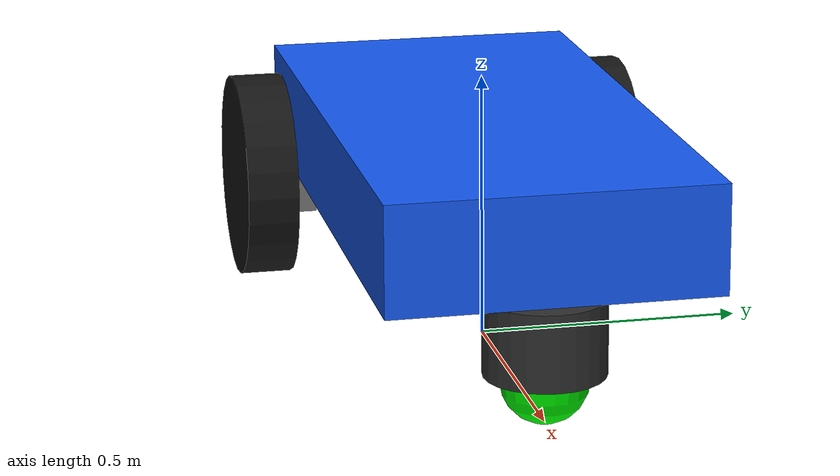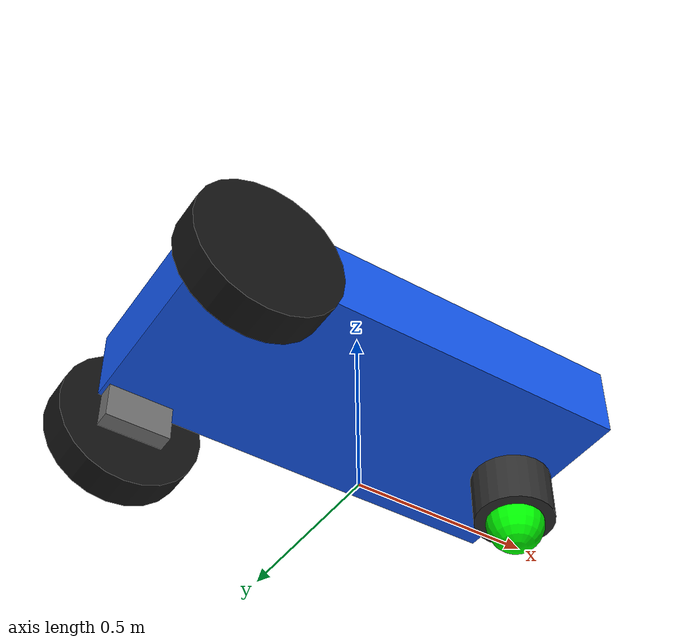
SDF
<?xml version="1.0" ?>
<sdf version="1.9">
  <!-- x forward, y left, z up.  This is the Gazebo model spawned by cart_only. -->
  <model name="rear_steer_cart">
    <link name="base_link">
      <!-- Body bottom is z=0.24. It covers 0.16 m of each 0.40 m wheel. -->
      <pose>0 0 0.34 0 0 0</pose>
      <inertial><mass>10</mass><inertia><ixx>0.35</ixx><iyy>1.25</iyy><izz>1.4</izz></inertia></inertial>
      <visual name="body_visual">
        <geometry><box><size>1.2 0.6 0.2</size></box></geometry>
        <material><ambient>0.05 0.2 0.8 1</ambient><diffuse>0.08 0.35 0.95 1</diffuse><specular>0.4 0.4 0.4 1</specular></material>
      </visual>
      <collision name="body_collision"><geometry><box><size>1.2 0.6 0.2</size></box></geometry></collision>
      <visual name="left_motor_mount"><pose>-0.5 0.31 -0.10 0 0 0</pose><geometry><box><size>0.18 0.12 0.20</size></box></geometry><material><diffuse>0.45 0.45 0.45 1</diffuse></material></visual>
      <visual name="right_motor_mount"><pose>-0.5 -0.31 -0.10 0 0 0</pose><geometry><box><size>0.18 0.12 0.20</size></box></geometry><material><diffuse>0.45 0.45 0.45 1</diffuse></material></visual>
    </link>

    <!-- Small passive front ball caster: no motor and no commanded joint. -->
    <link name="front_caster_link">
      <pose relative_to="base_link">0.5 0 -0.26 0 0 0</pose>
      <inertial><mass>1</mass><inertia><ixx>0.01</ixx><iyy>0.01</iyy><izz>0.01</izz></inertia></inertial>
      <visual name="caster_visual">
        <geometry><sphere><radius>0.08</radius></sphere></geometry>
        <material><ambient>0 0.8 0 1</ambient><diffuse>0 1 0 1</diffuse><specular>0.3 0.3 0.3 1</specular></material>
      </visual>
      <collision name="caster_collision"><geometry><sphere><radius>0.08</radius></sphere></geometry></collision>
    </link>

    <!-- The small ball is held by a passive housing up to the chassis. -->
    <link name="front_caster_housing">
      <pose relative_to="base_link">0.5 0 -0.18 0 0 0</pose>
      <inertial><mass>0.1</mass><inertia><ixx>0.001</ixx><iyy>0.001</iyy><izz>0.001</izz></inertia></inertial>
      <visual name="housing_visual"><geometry><cylinder><radius>0.11</radius><length>0.14</length></cylinder></geometry><material><diffuse>0.18 0.18 0.18 1</diffuse></material></visual>
    </link>

    <!-- Two fixed-direction powered rear wheels.  There is no yaw steering joint. -->
    <link name="rear_left_wheel">
      <pose relative_to="base_link">-0.5 0.35 -0.14 0 0 0</pose>
      <inertial><mass>1</mass><inertia><ixx>0.005</ixx><iyy>0.005</iyy><izz>0.005</izz></inertia></inertial>
      <visual name="rear_left_visual">
        <pose>0 0 0 1.5708 0 0</pose>
        <geometry><cylinder><radius>0.2</radius><length>0.10</length></cylinder></geometry>
        <material><ambient>0.04 0.04 0.04 1</ambient><diffuse>0.08 0.08 0.08 1</diffuse></material>
      </visual>
      <collision name="rear_left_collision"><pose>0 0 0 1.5708 0 0</pose><geometry><cylinder><radius>0.2</radius><length>0.10</length></cylinder></geometry></collision>
    </link>
    <link name="rear_right_wheel">
      <pose relative_to="base_link">-0.5 -0.35 -0.14 0 0 0</pose>
      <inertial><mass>1</mass><inertia><ixx>0.005</ixx><iyy>0.005</iyy><izz>0.005</izz></inertia></inertial>
      <visual name="rear_right_visual">
        <pose>0 0 0 1.5708 0 0</pose>
        <geometry><cylinder><radius>0.2</radius><length>0.10</length></cylinder></geometry>
        <material><ambient>0.04 0.04 0.04 1</ambient><diffuse>0.08 0.08 0.08 1</diffuse></material>
      </visual>
      <collision name="rear_right_collision"><pose>0 0 0 1.5708 0 0</pose><geometry><cylinder><radius>0.2</radius><length>0.10</length></cylinder></geometry></collision>
    </link>

    <!-- Matches params_setting.json: rear-centre mount, 0.60 m above base_link, 40 deg down. -->
    <link name="camera_link"><pose relative_to="base_link">-0.5 0 0.6 0 -0.6981317 0</pose></link>
    <link name="camera_optical_frame"/>

    <joint name="front_caster_housing_joint" type="fixed"><parent>base_link</parent><child>front_caster_housing</child></joint>
    <joint name="front_caster_joint" type="ball"><parent>base_link</parent><child>front_caster_link</child></joint>
    <!-- DART does not support SDF continuous joints here; large revolute limits provide equivalent wheel rotation. -->
    <joint name="rear_left_wheel_joint" type="revolute"><parent>base_link</parent><child>rear_left_wheel</child><axis><xyz>0 1 0</xyz><limit><lower>-1000000</lower><upper>1000000</upper><effort>50</effort><velocity>20</velocity></limit><dynamics><damping>0.05</damping></dynamics></axis></joint>
    <joint name="rear_right_wheel_joint" type="revolute"><parent>base_link</parent><child>rear_right_wheel</child><axis><xyz>0 1 0</xyz><limit><lower>-1000000</lower><upper>1000000</upper><effort>50</effort><velocity>20</velocity></limit><dynamics><damping>0.05</damping></dynamics></axis></joint>
    <joint name="camera_joint" type="fixed"><parent>base_link</parent><child>camera_link</child></joint>
    <joint name="camera_optical_joint" type="fixed"><parent>camera_link</parent><child>camera_optical_frame</child></joint>

    <!-- ROS Float64 topics are bridged to these Gazebo Double angular-speed topics. -->
    <plugin filename="gz-sim-joint-controller-system" name="gz::sim::systems::JointController">
      <joint_name>rear_left_wheel_joint</joint_name><topic>/rear_left_wheel_speed_cmd</topic><use_force_commands>false</use_force_commands>
    </plugin>
    <plugin filename="gz-sim-joint-controller-system" name="gz::sim::systems::JointController">
      <joint_name>rear_right_wheel_joint</joint_name><topic>/rear_right_wheel_speed_cmd</topic><use_force_commands>false</use_force_commands>
    </plugin>
    <plugin filename="gz-sim-pose-publisher-system" name="gz::sim::systems::PosePublisher">
      <publish_link_pose>false</publish_link_pose><publish_model_pose>true</publish_model_pose>
      <use_pose_vector_msg>true</use_pose_vector_msg><update_frequency>20</update_frequency>
    </plugin>
  </model>
</sdf>
